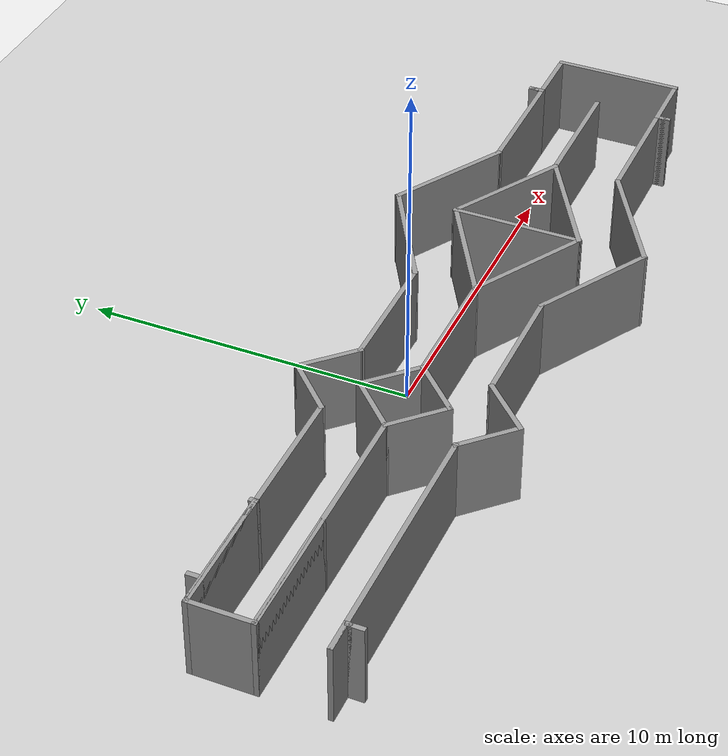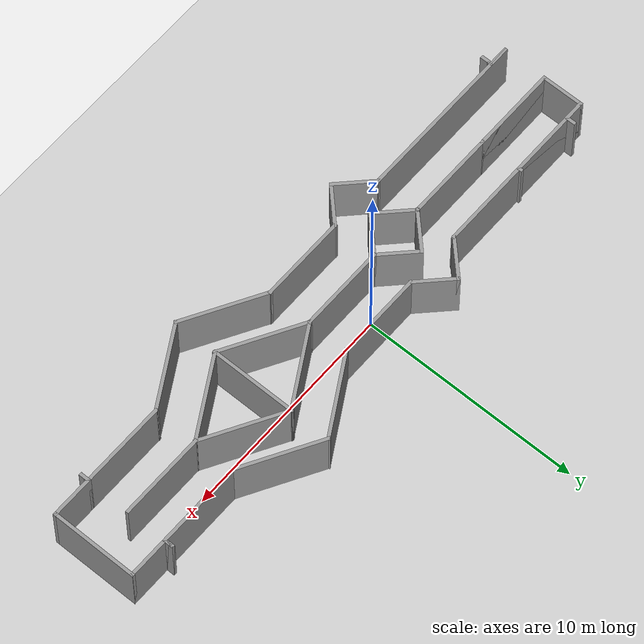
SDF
<sdf version="1.6">
 <world name="racecar_tunnel">
  <light name="sun" type="directional">
   <pose>0 0 10 0 -0 0</pose>
   <diffuse>0.8 0.8 0.8 1</diffuse>
   <specular>0.1 0.1 0.1 1</specular>
   <attenuation>
    <range>1000</range>
    <constant>0.9</constant>
    <linear>0.01</linear>
    <quadratic>0.001</quadratic>
   </attenuation>
   <direction>-0.5 0.5 -1</direction>
  </light>
  <model name="ground_plane">
   <static>1</static>
   <link name="link">
    <collision name="collision">
     <geometry><plane><normal>0 0 1</normal><size>150 150</size></plane></geometry>
     <surface><friction><ode><mu>100</mu><mu2>50</mu2></ode></friction></surface>
    </collision>
    <visual name="visual">
     <cast_shadows>0</cast_shadows>
     <geometry><plane><normal>0 0 1</normal><size>150 150</size></plane></geometry>
     <material>
      <script><uri>file://media/materials/scripts/gazebo.material</uri><name>Gazebo/Grey</name></script>
     </material>
    </visual>
   </link>
  </model>
  <gravity>0 0 -9.8</gravity>
  <magnetic_field>6e-06 2.3e-05 -4.2e-05</magnetic_field>
  <atmosphere type="adiabatic"/>
  <physics name="default_physics" default="0" type="ode">
   <max_step_size>0.001</max_step_size>
   <real_time_factor>1</real_time_factor>
   <real_time_update_rate>1000</real_time_update_rate>
  </physics>
  <scene><ambient>0.4 0.4 0.4 1</ambient><background>0.7 0.7 0.7 1</background><shadows>1</shadows></scene>
  <spherical_coordinates>
   <surface_model>EARTH_WGS84</surface_model>
   <latitude_deg>0</latitude_deg>
   <longitude_deg>0</longitude_deg>
   <elevation>0</elevation>
   <heading_deg>0</heading_deg>
  </spherical_coordinates>
  <model name="_Racecar_SimuWalker_2019">
   <pose>1.44958 -1.11808 0 0 -0 0</pose>
   <link name="Wall_10">
    <collision name="Wall_10_Collision">
     <geometry><box><size>8 0.15 2.5</size></box></geometry>
     <pose>0 0 1.25 0 -0 0</pose>
    </collision>
    <visual name="Wall_10_Visual">
     <pose>0 0 1.25 0 -0 0</pose>
     <geometry><box><size>8 0.15 2.5</size></box></geometry>
     <material>
      <script><uri>file://media/materials/scripts/gazebo.material</uri><name>Gazebo/Grey</name></script>
      <ambient>1 1 1 1</ambient>
     </material>
    </visual>
    <pose>-9.41735 0.075 0 0 -0 0</pose>
   </link>
   <link name="Wall_11">
    <collision name="Wall_11_Collision">
     <geometry><box><size>0.16 0.15 2.5</size></box></geometry>
     <pose>0 0 1.25 0 -0 0</pose>
    </collision>
    <visual name="Wall_11_Visual">
     <pose>0 0 1.25 0 -0 0</pose>
     <geometry><box><size>0.16 0.15 2.5</size></box></geometry>
     <material>
      <script><uri>file://media/materials/scripts/gazebo.material</uri><name>Gazebo/Grey</name></script>
      <ambient>1 1 1 1</ambient>
     </material>
    </visual>
    <pose>-5.48735 0.075 0 0 -0 0</pose>
   </link>
   <link name="Wall_13">
    <collision name="Wall_13_Collision">
     <geometry><box><size>8 0.15 2.5</size></box></geometry>
     <pose>0 0 1.25 0 -0 0</pose>
    </collision>
    <visual name="Wall_13_Visual">
     <pose>0 0 1.25 0 -0 0</pose>
     <geometry><box><size>8 0.15 2.5</size></box></geometry>
     <material>
      <script><uri>file://media/materials/scripts/gazebo.material</uri><name>Gazebo/Grey</name></script>
      <ambient>1 1 1 1</ambient>
     </material>
    </visual>
    <pose>-9.41735 1.925 0 0 -0 0</pose>
   </link>
   <link name="Wall_15">
    <collision name="Wall_15_Collision">
     <geometry><box><size>4 0.15 2.5</size></box></geometry>
     <pose>0 0 1.25 0 -0 0</pose>
    </collision>
    <visual name="Wall_15_Visual">
     <pose>0 0 1.25 0 -0 0</pose>
     <geometry><box><size>4 0.15 2.5</size></box></geometry>
     <material>
      <script><uri>file://media/materials/scripts/gazebo.material</uri><name>Gazebo/Grey</name></script>
      <ambient>1 1 1 1</ambient>
     </material>
    </visual>
    <pose>-11.4173 1.925 0 0 -0 0</pose>
   </link>
   <link name="Wall_16">
    <collision name="Wall_16_Collision">
     <geometry><box><size>0.25 0.15 2.5</size></box></geometry>
     <pose>0 0 1.25 0 -0 0</pose>
    </collision>
    <visual name="Wall_16_Visual">
     <pose>0 0 1.25 0 -0 0</pose>
     <geometry><box><size>0.25 0.15 2.5</size></box></geometry>
     <material>
      <script><uri>file://media/materials/scripts/gazebo.material</uri><name>Gazebo/Grey</name></script>
      <ambient>1 1 1 1</ambient>
     </material>
    </visual>
    <pose>-9.49235 1.975 0 0 -0 1.5708</pose>
   </link>
   <link name="Wall_19">
    <collision name="Wall_19_Collision">
     <geometry><box><size>4 0.15 2.5</size></box></geometry>
     <pose>0 0 1.25 0 -0 0</pose>
    </collision>
    <visual name="Wall_19_Visual">
     <pose>0 0 1.25 0 -0 0</pose>
     <geometry><box><size>4 0.15 2.5</size></box></geometry>
     <material>
      <script><uri>file://media/materials/scripts/gazebo.material</uri><name>Gazebo/Grey</name></script>
      <ambient>1 1 1 1</ambient>
     </material>
    </visual>
    <pose>-11.4173 0.075 0 0 -0 0</pose>
   </link>
   <link name="Wall_22">
    <collision name="Wall_22_Collision">
     <geometry><box><size>0.15 0.15 2.5</size></box></geometry>
     <pose>0 0 1.25 0 -0 0</pose>
    </collision>
    <visual name="Wall_22_Visual">
     <pose>0 0 1.25 0 -0 0</pose>
     <geometry><box><size>0.15 0.15 2.5</size></box></geometry>
     <material>
      <script><uri>file://media/materials/scripts/gazebo.material</uri><name>Gazebo/Grey</name></script>
      <ambient>1 1 1 1</ambient>
     </material>
    </visual>
    <pose>-9.49235 0.075 0 0 -0 0</pose>
   </link>
   <link name="Wall_23">
    <collision name="Wall_23_Collision">
     <geometry><box><size>0.15 0.15 2.5</size></box></geometry>
     <pose>0 0 1.25 0 -0 0</pose>
    </collision>
    <visual name="Wall_23_Visual">
     <pose>0 0 1.25 0 -0 0</pose>
     <geometry><box><size>0.15 0.15 2.5</size></box></geometry>
     <material>
      <script><uri>file://media/materials/scripts/gazebo.material</uri><name>Gazebo/Grey</name></script>
      <ambient>1 1 1 1</ambient>
     </material>
    </visual>
    <pose>-9.49235 0.075 0 0 -0 0</pose>
   </link>
   <link name="Wall_24">
    <collision name="Wall_24_Collision">
     <geometry><box><size>0.15 0.15 2.5</size></box></geometry>
     <pose>0 0 1.25 0 -0 0</pose>
    </collision>
    <visual name="Wall_24_Visual">
     <pose>0 0 1.25 0 -0 0</pose>
     <geometry><box><size>0.15 0.15 2.5</size></box></geometry>
     <material>
      <script><uri>file://media/materials/scripts/gazebo.material</uri><name>Gazebo/Grey</name></script>
      <ambient>1 1 1 1</ambient>
     </material>
    </visual>
    <pose>-9.49235 0.075 0 0 -0 0</pose>
   </link>
   <link name="Wall_26">
    <collision name="Wall_26_Collision">
     <geometry><box><size>2 0.15 2.5</size></box></geometry>
     <pose>0 0 1.25 0 -0 0</pose>
    </collision>
    <visual name="Wall_26_Visual">
     <pose>0 0 1.25 0 -0 0</pose>
     <geometry><box><size>2 0.15 2.5</size></box></geometry>
     <material>
      <script><uri>file://media/materials/scripts/gazebo.material</uri><name>Gazebo/Grey</name></script>
      <ambient>1 1 1 1</ambient>
     </material>
    </visual>
    <pose>-4.83827 2.57907 0 0 -0 0.785398</pose>
   </link>
   <link name="Wall_27">
    <collision name="Wall_27_Collision">
     <geometry><box><size>2 0.15 2.5</size></box></geometry>
     <pose>0 0 1.25 0 -0 0</pose>
    </collision>
    <visual name="Wall_27_Visual">
     <pose>0 0 1.25 0 -0 0</pose>
     <geometry><box><size>2 0.15 2.5</size></box></geometry>
     <material>
      <script><uri>file://media/materials/scripts/gazebo.material</uri><name>Gazebo/Grey</name></script>
      <ambient>1 1 1 1</ambient>
     </material>
    </visual>
    <pose>-3.53012 2.57907 0 0 0 -0.785398</pose>
   </link>
   <link name="Wall_28">
    <collision name="Wall_28_Collision">
     <geometry><box><size>4 0.15 2.5</size></box></geometry>
     <pose>0 0 1.25 0 -0 0</pose>
    </collision>
    <visual name="Wall_28_Visual">
     <pose>0 0 1.25 0 -0 0</pose>
     <geometry><box><size>4 0.15 2.5</size></box></geometry>
     <material>
      <script><uri>file://media/materials/scripts/gazebo.material</uri><name>Gazebo/Grey</name></script>
      <ambient>1 1 1 1</ambient>
     </material>
    </visual>
    <pose>-0.951051 1.925 0 0 -0 0</pose>
   </link>
   <link name="Wall_31">
    <collision name="Wall_31_Collision">
     <geometry><box><size>4 0.15 2.5</size></box></geometry>
     <pose>0 0 1.25 0 -0 0</pose>
    </collision>
    <visual name="Wall_31_Visual">
     <pose>0 0 1.25 0 -0 0</pose>
     <geometry><box><size>4 0.15 2.5</size></box></geometry>
     <material>
      <script><uri>file://media/materials/scripts/gazebo.material</uri><name>Gazebo/Grey</name></script>
      <ambient>1 1 1 1</ambient>
     </material>
    </visual>
    <pose>2.64105 2.8875 0 0 -0 0.523599</pose>
   </link>
   <link name="Wall_32">
    <collision name="Wall_32_Collision">
     <geometry><box><size>4 0.15 2.5</size></box></geometry>
     <pose>0 0 1.25 0 -0 0</pose>
    </collision>
    <visual name="Wall_32_Visual">
     <pose>0 0 1.25 0 -0 0</pose>
     <geometry><box><size>4 0.15 2.5</size></box></geometry>
     <material>
      <script><uri>file://media/materials/scripts/gazebo.material</uri><name>Gazebo/Grey</name></script>
      <ambient>1 1 1 1</ambient>
     </material>
    </visual>
    <pose>5.97525 2.8875 0 0 0 -0.523599</pose>
   </link>
   <link name="Wall_34">
    <collision name="Wall_34_Collision">
     <geometry><box><size>4 0.15 2.5</size></box></geometry>
     <pose>0 0 1.25 0 -0 0</pose>
    </collision>
    <visual name="Wall_34_Visual">
     <pose>0 0 1.25 0 -0 0</pose>
     <geometry><box><size>4 0.15 2.5</size></box></geometry>
     <material>
      <script><uri>file://media/materials/scripts/gazebo.material</uri><name>Gazebo/Grey</name></script>
      <ambient>1 1 1 1</ambient>
     </material>
    </visual>
    <pose>9.56735 1.925 0 0 -0 0</pose>
   </link>
   <link name="Wall_36">
    <collision name="Wall_36_Collision">
     <geometry><box><size>0.15 0.15 2.5</size></box></geometry>
     <pose>0 0 1.25 0 -0 0</pose>
    </collision>
    <visual name="Wall_36_Visual">
     <pose>0 0 1.25 0 -0 0</pose>
     <geometry><box><size>0.15 0.15 2.5</size></box></geometry>
     <material>
      <script><uri>file://media/materials/scripts/gazebo.material</uri><name>Gazebo/Grey</name></script>
      <ambient>1 1 1 1</ambient>
     </material>
    </visual>
    <pose>11.4923 1.925 0 0 -0 0</pose>
   </link>
   <link name="Wall_37">
    <collision name="Wall_37_Collision">
     <geometry><box><size>0.5 0.15 2.5</size></box></geometry>
     <pose>0 0 1.25 0 -0 0</pose>
    </collision>
    <visual name="Wall_37_Visual">
     <pose>0 0 1.25 0 -0 0</pose>
     <geometry><box><size>0.5 0.15 2.5</size></box></geometry>
     <material>
      <script><uri>file://media/materials/scripts/gazebo.material</uri><name>Gazebo/Grey</name></script>
      <ambient>1 1 1 1</ambient>
     </material>
    </visual>
    <pose>11.4923 2.1 0 0 -0 1.5708</pose>
   </link>
   <link name="Wall_38">
    <collision name="Wall_38_Collision">
     <geometry><box><size>0.5 0.15 2.5</size></box></geometry>
     <pose>0 0 1.25 0 -0 0</pose>
    </collision>
    <visual name="Wall_38_Visual">
     <pose>0 0 1.25 0 -0 0</pose>
     <geometry><box><size>0.5 0.15 2.5</size></box></geometry>
     <material>
      <script><uri>file://media/materials/scripts/gazebo.material</uri><name>Gazebo/Grey</name></script>
      <ambient>1 1 1 1</ambient>
     </material>
    </visual>
    <pose>11.4923 2.1 0 0 0 -1.5708</pose>
   </link>
   <link name="Wall_39">
    <collision name="Wall_39_Collision">
     <geometry><box><size>2 0.15 2.5</size></box></geometry>
     <pose>0 0 1.25 0 -0 0</pose>
    </collision>
    <visual name="Wall_39_Visual">
     <pose>0 0 1.25 0 -0 0</pose>
     <geometry><box><size>2 0.15 2.5</size></box></geometry>
     <material>
      <script><uri>file://media/materials/scripts/gazebo.material</uri><name>Gazebo/Grey</name></script>
      <ambient>1 1 1 1</ambient>
     </material>
    </visual>
    <pose>12.4173 1.925 0 0 -0 0</pose>
   </link>
   <link name="Wall_41">
    <collision name="Wall_41_Collision">
     <geometry><box><size>4 0.15 2.5</size></box></geometry>
     <pose>0 0 1.25 0 -0 0</pose>
    </collision>
    <visual name="Wall_41_Visual">
     <pose>0 0 1.25 0 -0 0</pose>
     <geometry><box><size>4 0.15 2.5</size></box></geometry>
     <material>
      <script><uri>file://media/materials/scripts/gazebo.material</uri><name>Gazebo/Grey</name></script>
      <ambient>1 1 1 1</ambient>
     </material>
    </visual>
    <pose>13.3423 0 0 0 0 -1.5708</pose>
   </link>
   <link name="Wall_42">
    <collision name="Wall_42_Collision">
     <geometry><box><size>2 0.15 2.5</size></box></geometry>
     <pose>0 0 1.25 0 -0 0</pose>
    </collision>
    <visual name="Wall_42_Visual">
     <pose>0 0 1.25 0 -0 0</pose>
     <geometry><box><size>2 0.15 2.5</size></box></geometry>
     <material>
      <script><uri>file://media/materials/scripts/gazebo.material</uri><name>Gazebo/Grey</name></script>
      <ambient>1 1 1 1</ambient>
     </material>
    </visual>
    <pose>12.4173 -1.925 0 0 -0 3.14159</pose>
   </link>
   <link name="Wall_43">
    <collision name="Wall_43_Collision">
     <geometry><box><size>0.5 0.15 2.5</size></box></geometry>
     <pose>0 0 1.25 0 -0 0</pose>
    </collision>
    <visual name="Wall_43_Visual">
     <pose>0 0 1.25 0 -0 0</pose>
     <geometry><box><size>0.5 0.15 2.5</size></box></geometry>
     <material>
      <script><uri>file://media/materials/scripts/gazebo.material</uri><name>Gazebo/Grey</name></script>
      <ambient>1 1 1 1</ambient>
     </material>
    </visual>
    <pose>11.4923 -2.1 0 0 0 -1.5708</pose>
   </link>
   <link name="Wall_44">
    <collision name="Wall_44_Collision">
     <geometry><box><size>0.5 0.15 2.5</size></box></geometry>
     <pose>0 0 1.25 0 -0 0</pose>
    </collision>
    <visual name="Wall_44_Visual">
     <pose>0 0 1.25 0 -0 0</pose>
     <geometry><box><size>0.5 0.15 2.5</size></box></geometry>
     <material>
      <script><uri>file://media/materials/scripts/gazebo.material</uri><name>Gazebo/Grey</name></script>
      <ambient>1 1 1 1</ambient>
     </material>
    </visual>
    <pose>11.4923 -2.1 0 0 -0 1.5708</pose>
   </link>
   <link name="Wall_45">
    <collision name="Wall_45_Collision">
     <geometry><box><size>4 0.15 2.5</size></box></geometry>
     <pose>0 0 1.25 0 -0 0</pose>
    </collision>
    <visual name="Wall_45_Visual">
     <pose>0 0 1.25 0 -0 0</pose>
     <geometry><box><size>4 0.15 2.5</size></box></geometry>
     <material>
      <script><uri>file://media/materials/scripts/gazebo.material</uri><name>Gazebo/Grey</name></script>
      <ambient>1 1 1 1</ambient>
     </material>
    </visual>
    <pose>9.56735 -1.925 0 0 -0 3.14159</pose>
   </link>
   <link name="Wall_47">
    <collision name="Wall_47_Collision">
     <geometry><box><size>4 0.15 2.5</size></box></geometry>
     <pose>0 0 1.25 0 -0 0</pose>
    </collision>
    <visual name="Wall_47_Visual">
     <pose>0 0 1.25 0 -0 0</pose>
     <geometry><box><size>4 0.15 2.5</size></box></geometry>
     <material>
      <script><uri>file://media/materials/scripts/gazebo.material</uri><name>Gazebo/Grey</name></script>
      <ambient>1 1 1 1</ambient>
     </material>
    </visual>
    <pose>5.97525 -2.8875 0 0 0 -2.61799</pose>
   </link>
   <link name="Wall_48">
    <collision name="Wall_48_Collision">
     <geometry><box><size>4 0.15 2.5</size></box></geometry>
     <pose>0 0 1.25 0 -0 0</pose>
    </collision>
    <visual name="Wall_48_Visual">
     <pose>0 0 1.25 0 -0 0</pose>
     <geometry><box><size>4 0.15 2.5</size></box></geometry>
     <material>
      <script><uri>file://media/materials/scripts/gazebo.material</uri><name>Gazebo/Grey</name></script>
      <ambient>1 1 1 1</ambient>
     </material>
    </visual>
    <pose>2.64105 -2.8875 0 0 -0 2.61799</pose>
   </link>
   <link name="Wall_49">
    <collision name="Wall_49_Collision">
     <geometry><box><size>4 0.15 2.5</size></box></geometry>
     <pose>0 0 1.25 0 -0 0</pose>
    </collision>
    <visual name="Wall_49_Visual">
     <pose>0 0 1.25 0 -0 0</pose>
     <geometry><box><size>4 0.15 2.5</size></box></geometry>
     <material>
      <script><uri>file://media/materials/scripts/gazebo.material</uri><name>Gazebo/Grey</name></script>
      <ambient>1 1 1 1</ambient>
     </material>
    </visual>
    <pose>-0.951051 -1.925 0 0 -0 3.14159</pose>
   </link>
   <link name="Wall_51">
    <collision name="Wall_51_Collision">
     <geometry><box><size>2 0.15 2.5</size></box></geometry>
     <pose>0 0 1.25 0 -0 0</pose>
    </collision>
    <visual name="Wall_51_Visual">
     <pose>0 0 1.25 0 -0 0</pose>
     <geometry><box><size>2 0.15 2.5</size></box></geometry>
     <material>
      <script><uri>file://media/materials/scripts/gazebo.material</uri><name>Gazebo/Grey</name></script>
      <ambient>1 1 1 1</ambient>
     </material>
    </visual>
    <pose>-3.53012 -2.57907 0 0 0 -2.35619</pose>
   </link>
   <link name="Wall_52">
    <collision name="Wall_52_Collision">
     <geometry><box><size>2 0.15 2.5</size></box></geometry>
     <pose>0 0 1.25 0 -0 0</pose>
    </collision>
    <visual name="Wall_52_Visual">
     <pose>0 0 1.25 0 -0 0</pose>
     <geometry><box><size>2 0.15 2.5</size></box></geometry>
     <material>
      <script><uri>file://media/materials/scripts/gazebo.material</uri><name>Gazebo/Grey</name></script>
      <ambient>1 1 1 1</ambient>
     </material>
    </visual>
    <pose>-4.83827 -2.57907 0 0 -0 2.35619</pose>
   </link>
   <link name="Wall_53">
    <collision name="Wall_53_Collision">
     <geometry><box><size>8 0.15 2.5</size></box></geometry>
     <pose>0 0 1.25 0 -0 0</pose>
    </collision>
    <visual name="Wall_53_Visual">
     <pose>0 0 1.25 0 -0 0</pose>
     <geometry><box><size>8 0.15 2.5</size></box></geometry>
     <material>
      <script><uri>file://media/materials/scripts/gazebo.material</uri><name>Gazebo/Grey</name></script>
      <ambient>1 1 1 1</ambient>
     </material>
    </visual>
    <pose>-9.41735 -1.925 0 0 -0 3.14159</pose>
   </link>
   <link name="Wall_55">
    <collision name="Wall_55_Collision">
     <geometry><box><size>0.15 0.15 2.5</size></box></geometry>
     <pose>0 0 1.25 0 -0 0</pose>
    </collision>
    <visual name="Wall_55_Visual">
     <pose>0 0 1.25 0 -0 0</pose>
     <geometry><box><size>0.15 0.15 2.5</size></box></geometry>
     <material>
      <script><uri>file://media/materials/scripts/gazebo.material</uri><name>Gazebo/Grey</name></script>
      <ambient>1 1 1 1</ambient>
     </material>
    </visual>
    <pose>-13.3423 0.075 0 0 -0 0</pose>
   </link>
   <link name="Wall_57">
    <collision name="Wall_57_Collision">
     <geometry><box><size>2 0.15 2.5</size></box></geometry>
     <pose>0 0 1.25 0 -0 0</pose>
    </collision>
    <visual name="Wall_57_Visual">
     <pose>0 0 1.25 0 -0 0</pose>
     <geometry><box><size>2 0.15 2.5</size></box></geometry>
     <material>
      <script><uri>file://media/materials/scripts/gazebo.material</uri><name>Gazebo/Grey</name></script>
      <ambient>1 1 1 1</ambient>
     </material>
    </visual>
    <pose>-4.83827 0.729074 0 0 -0 0.785398</pose>
   </link>
   <link name="Wall_58">
    <collision name="Wall_58_Collision">
     <geometry><box><size>2 0.15 2.5</size></box></geometry>
     <pose>0 0 1.25 0 -0 0</pose>
    </collision>
    <visual name="Wall_58_Visual">
     <pose>0 0 1.25 0 -0 0</pose>
     <geometry><box><size>2 0.15 2.5</size></box></geometry>
     <material>
      <script><uri>file://media/materials/scripts/gazebo.material</uri><name>Gazebo/Grey</name></script>
      <ambient>1 1 1 1</ambient>
     </material>
    </visual>
    <pose>-3.53012 0.729074 0 0 0 -0.785398</pose>
   </link>
   <link name="Wall_59">
    <collision name="Wall_59_Collision">
     <geometry><box><size>4 0.15 2.5</size></box></geometry>
     <pose>0 0 1.25 0 -0 0</pose>
    </collision>
    <visual name="Wall_59_Visual">
     <pose>0 0 1.25 0 -0 0</pose>
     <geometry><box><size>4 0.15 2.5</size></box></geometry>
     <material>
      <script><uri>file://media/materials/scripts/gazebo.material</uri><name>Gazebo/Grey</name></script>
      <ambient>1 1 1 1</ambient>
     </material>
    </visual>
    <pose>-0.951051 0.075 0 0 -0 0</pose>
   </link>
   <link name="Wall_60">
    <collision name="Wall_60_Collision">
     <geometry><box><size>4 0.15 2.5</size></box></geometry>
     <pose>0 0 1.25 0 -0 0</pose>
    </collision>
    <visual name="Wall_60_Visual">
     <pose>0 0 1.25 0 -0 0</pose>
     <geometry><box><size>4 0.15 2.5</size></box></geometry>
     <material>
      <script><uri>file://media/materials/scripts/gazebo.material</uri><name>Gazebo/Grey</name></script>
      <ambient>1 1 1 1</ambient>
     </material>
    </visual>
    <pose>2.64105 1.0375 0 0 -0 0.523599</pose>
   </link>
   <link name="Wall_61">
    <collision name="Wall_61_Collision">
     <geometry><box><size>4 0.15 2.5</size></box></geometry>
     <pose>0 0 1.25 0 -0 0</pose>
    </collision>
    <visual name="Wall_61_Visual">
     <pose>0 0 1.25 0 -0 0</pose>
     <geometry><box><size>4 0.15 2.5</size></box></geometry>
     <material>
      <script><uri>file://media/materials/scripts/gazebo.material</uri><name>Gazebo/Grey</name></script>
      <ambient>1 1 1 1</ambient>
     </material>
    </visual>
    <pose>5.97525 1.0375 0 0 0 -0.523599</pose>
   </link>
   <link name="Wall_62">
    <collision name="Wall_62_Collision">
     <geometry><box><size>4 0.15 2.5</size></box></geometry>
     <pose>0 0 1.25 0 -0 0</pose>
    </collision>
    <visual name="Wall_62_Visual">
     <pose>0 0 1.25 0 -0 0</pose>
     <geometry><box><size>4 0.15 2.5</size></box></geometry>
     <material>
      <script><uri>file://media/materials/scripts/gazebo.material</uri><name>Gazebo/Grey</name></script>
      <ambient>1 1 1 1</ambient>
     </material>
    </visual>
    <pose>9.56735 0.075 0 0 -0 0</pose>
   </link>
   <link name="Wall_64">
    <collision name="Wall_64_Collision">
     <geometry><box><size>4 0.15 2.5</size></box></geometry>
     <pose>0 0 1.25 0 -0 0</pose>
    </collision>
    <visual name="Wall_64_Visual">
     <pose>0 0 1.25 0 -0 0</pose>
     <geometry><box><size>4 0.15 2.5</size></box></geometry>
     <material>
      <script><uri>file://media/materials/scripts/gazebo.material</uri><name>Gazebo/Grey</name></script>
      <ambient>1 1 1 1</ambient>
     </material>
    </visual>
    <pose>5.97525 -0.8875 0 0 0 -2.61799</pose>
   </link>
   <link name="Wall_65">
    <collision name="Wall_65_Collision">
     <geometry><box><size>4 0.15 2.5</size></box></geometry>
     <pose>0 0 1.25 0 -0 0</pose>
    </collision>
    <visual name="Wall_65_Visual">
     <pose>0 0 1.25 0 -0 0</pose>
     <geometry><box><size>4 0.15 2.5</size></box></geometry>
     <material>
      <script><uri>file://media/materials/scripts/gazebo.material</uri><name>Gazebo/Grey</name></script>
      <ambient>1 1 1 1</ambient>
     </material>
    </visual>
    <pose>2.64105 -0.8875 0 0 -0 2.61799</pose>
   </link>
   <link name="Wall_67">
    <collision name="Wall_67_Collision">
     <geometry><box><size>2 0.15 2.5</size></box></geometry>
     <pose>0 0 1.25 0 -0 0</pose>
    </collision>
    <visual name="Wall_67_Visual">
     <pose>0 0 1.25 0 -0 0</pose>
     <geometry><box><size>2 0.15 2.5</size></box></geometry>
     <material>
      <script><uri>file://media/materials/scripts/gazebo.material</uri><name>Gazebo/Grey</name></script>
      <ambient>1 1 1 1</ambient>
     </material>
    </visual>
    <pose>-3.53012 -0.579074 0 0 0 -2.35619</pose>
   </link>
   <link name="Wall_68">
    <collision name="Wall_68_Collision">
     <geometry><box><size>2 0.15 2.5</size></box></geometry>
     <pose>0 0 1.25 0 -0 0</pose>
    </collision>
    <visual name="Wall_68_Visual">
     <pose>0 0 1.25 0 -0 0</pose>
     <geometry><box><size>2 0.15 2.5</size></box></geometry>
     <material>
      <script><uri>file://media/materials/scripts/gazebo.material</uri><name>Gazebo/Grey</name></script>
      <ambient>1 1 1 1</ambient>
     </material>
    </visual>
    <pose>-4.83827 -0.579074 0 0 -0 2.35619</pose>
   </link>
   <link name="Wall_70">
    <collision name="Wall_70_Collision">
     <geometry><box><size>4 0.15 2.5</size></box></geometry>
     <pose>0 0 1.25 0 -0 0</pose>
    </collision>
    <visual name="Wall_70_Visual">
     <pose>0 0 1.25 0 -0 0</pose>
     <geometry><box><size>4 0.15 2.5</size></box></geometry>
     <material>
      <script><uri>file://media/materials/scripts/gazebo.material</uri><name>Gazebo/Grey</name></script>
      <ambient>1 1 1 1</ambient>
     </material>
    </visual>
    <pose>4.30815 0.075 0 0 0 -1.5708</pose>
   </link>
   <link name="Wall_72">
    <collision name="Wall_72_Collision">
     <geometry><box><size>1 0.15 2.5</size></box></geometry>
     <pose>0 0 1.25 0 -0 0</pose>
    </collision>
    <visual name="Wall_72_Visual">
     <pose>0 0 1.25 0 -0 0</pose>
     <geometry><box><size>1 0.15 2.5</size></box></geometry>
     <material>
      <script><uri>file://media/materials/scripts/gazebo.material</uri><name>Gazebo/Grey</name></script>
      <ambient>1 1 1 1</ambient>
     </material>
    </visual>
    <pose>-12.9173 -1.925 0 0 -0 0</pose>
   </link>
   <link name="Wall_73">
    <collision name="Wall_73_Collision">
     <geometry><box><size>0.25 0.15 2.5</size></box></geometry>
     <pose>0 0 1.25 0 -0 0</pose>
    </collision>
    <visual name="Wall_73_Visual">
     <pose>0 0 1.25 0 -0 0</pose>
     <geometry><box><size>0.25 0.15 2.5</size></box></geometry>
     <material>
      <script><uri>file://media/materials/scripts/gazebo.material</uri><name>Gazebo/Grey</name></script>
      <ambient>1 1 1 1</ambient>
     </material>
    </visual>
    <pose>-12.4923 -1.975 0 0 0 -1.5708</pose>
   </link>
   <link name="Wall_74">
    <collision name="Wall_74_Collision">
     <geometry><box><size>0.25 0.15 2.5</size></box></geometry>
     <pose>0 0 1.25 0 -0 0</pose>
    </collision>
    <visual name="Wall_74_Visual">
     <pose>0 0 1.25 0 -0 0</pose>
     <geometry><box><size>0.25 0.15 2.5</size></box></geometry>
     <material>
      <script><uri>file://media/materials/scripts/gazebo.material</uri><name>Gazebo/Grey</name></script>
      <ambient>1 1 1 1</ambient>
     </material>
    </visual>
    <pose>-12.4923 -1.975 0 0 -0 1.5708</pose>
   </link>
   <link name="Wall_76">
    <collision name="Wall_76_Collision">
     <geometry><box><size>1 0.15 2.5</size></box></geometry>
     <pose>0 0 1.25 0 -0 0</pose>
    </collision>
    <visual name="Wall_76_Visual">
     <pose>0 0 1.25 0 -0 0</pose>
     <geometry><box><size>1 0.15 2.5</size></box></geometry>
     <material>
      <script><uri>file://media/materials/scripts/gazebo.material</uri><name>Gazebo/Grey</name></script>
      <ambient>1 1 1 1</ambient>
     </material>
    </visual>
    <pose>-12.9173 1.925 0 0 -0 0</pose>
   </link>
   <link name="Wall_77">
    <collision name="Wall_77_Collision">
     <geometry><box><size>0.5 0.15 2.5</size></box></geometry>
     <pose>0 0 1.25 0 -0 0</pose>
    </collision>
    <visual name="Wall_77_Visual">
     <pose>0 0 1.25 0 -0 0</pose>
     <geometry><box><size>0.5 0.15 2.5</size></box></geometry>
     <material>
      <script><uri>file://media/materials/scripts/gazebo.material</uri><name>Gazebo/Grey</name></script>
      <ambient>1 1 1 1</ambient>
     </material>
    </visual>
    <pose>-12.4923 2.1 0 0 -0 1.5708</pose>
   </link>
   <link name="Wall_79">
    <collision name="Wall_79_Collision">
     <geometry><box><size>0.5 0.15 2.5</size></box></geometry>
     <pose>0 0 1.25 0 -0 0</pose>
    </collision>
    <visual name="Wall_79_Visual">
     <pose>0 0 1.25 0 -0 0</pose>
     <geometry><box><size>0.5 0.15 2.5</size></box></geometry>
     <material>
      <script><uri>file://media/materials/scripts/gazebo.material</uri><name>Gazebo/Grey</name></script>
      <ambient>1 1 1 1</ambient>
     </material>
    </visual>
    <pose>-12.4923 -2.2 0 0 0 -1.5708</pose>
   </link>
   <link name="Wall_9">
    <collision name="Wall_9_Collision">
     <geometry><box><size>2 0.15 2.5</size></box></geometry>
     <pose>0 0 1.25 0 -0 0</pose>
    </collision>
    <visual name="Wall_9_Visual">
     <pose>0 0 1.25 0 -0 0</pose>
     <geometry><box><size>2 0.15 2.5</size></box></geometry>
     <material>
      <script><uri>file://media/materials/scripts/gazebo.material</uri><name>Gazebo/Grey</name></script>
      <ambient>1 1 1 1</ambient>
     </material>
    </visual>
    <pose>-13.3423 1 0 0 0 -1.5708</pose>
   </link>
   <static>1</static>
  </model>
 </world>
</sdf>
